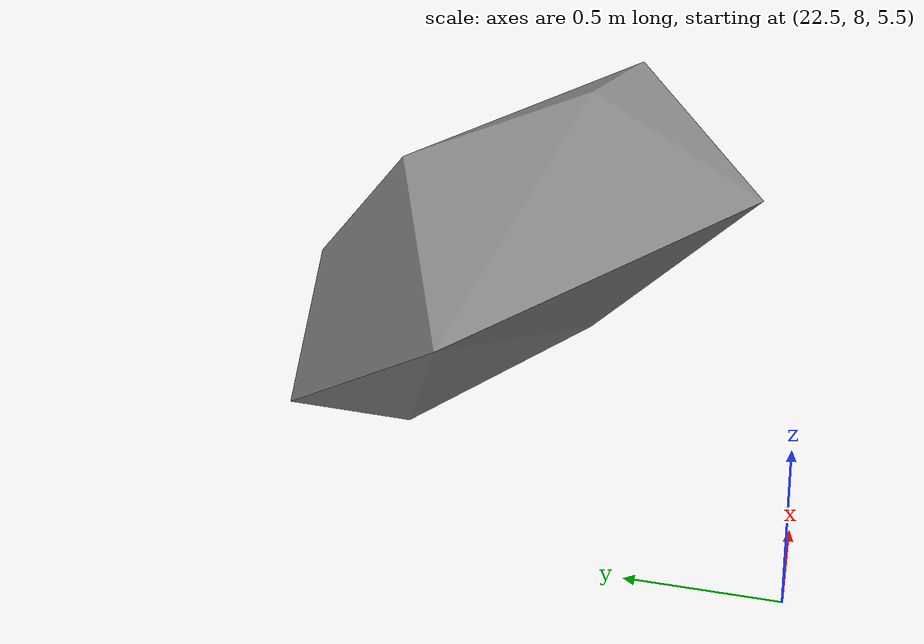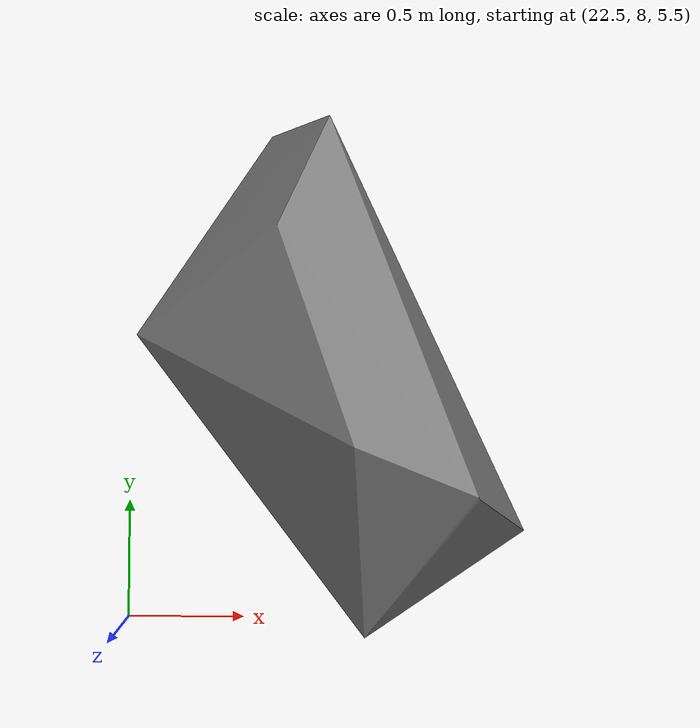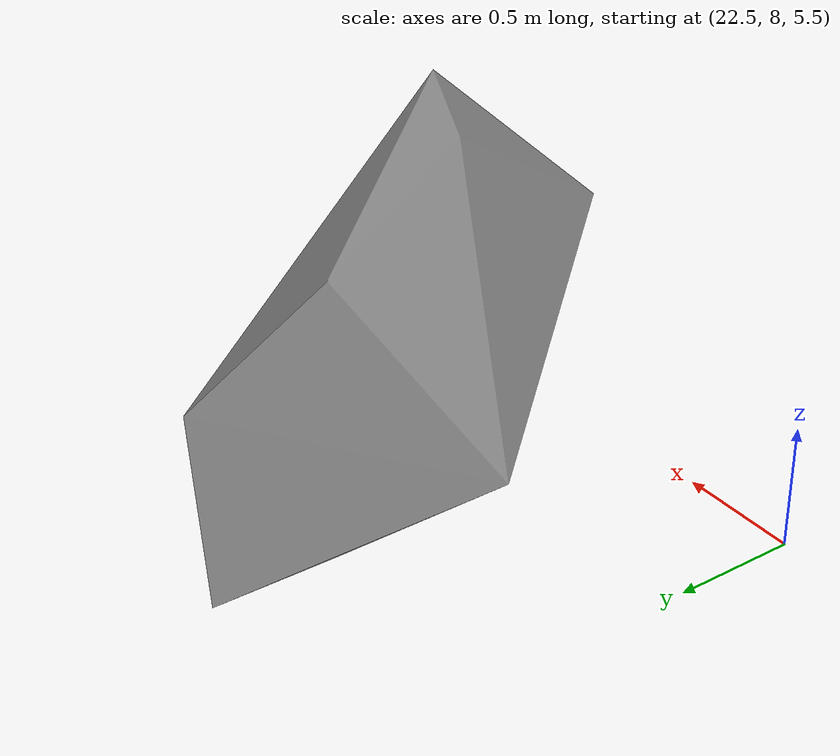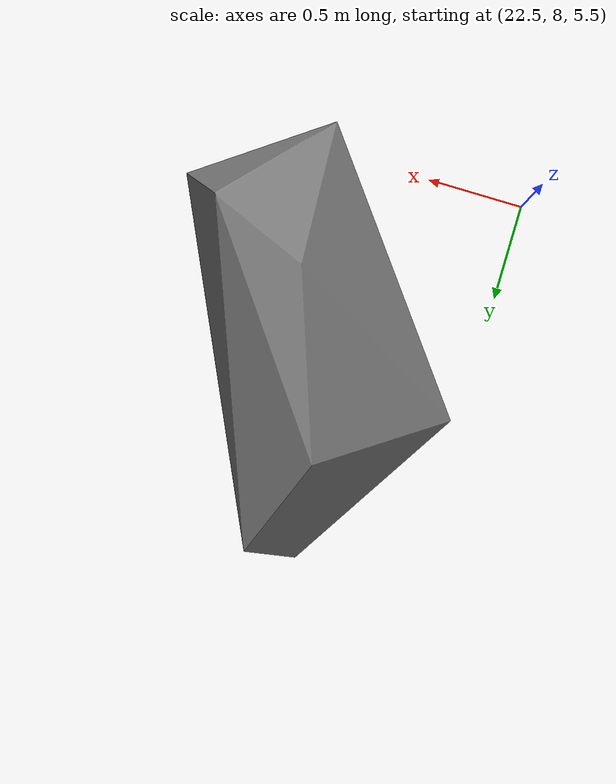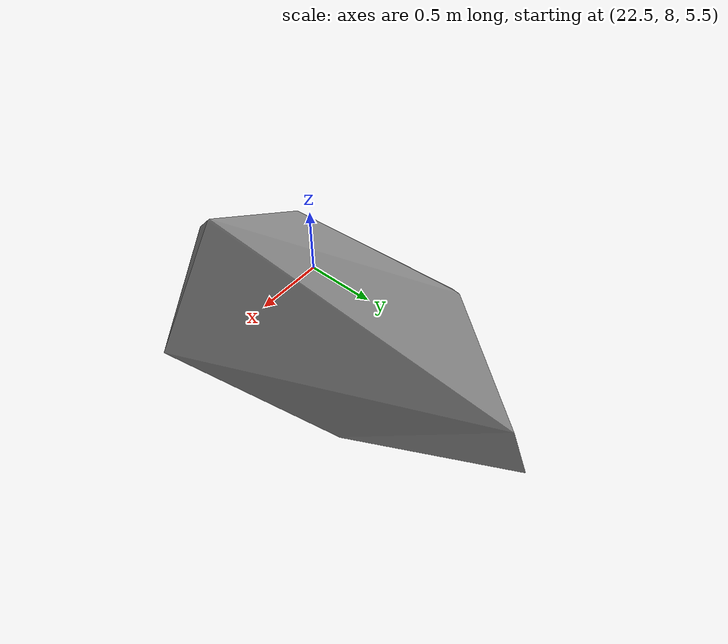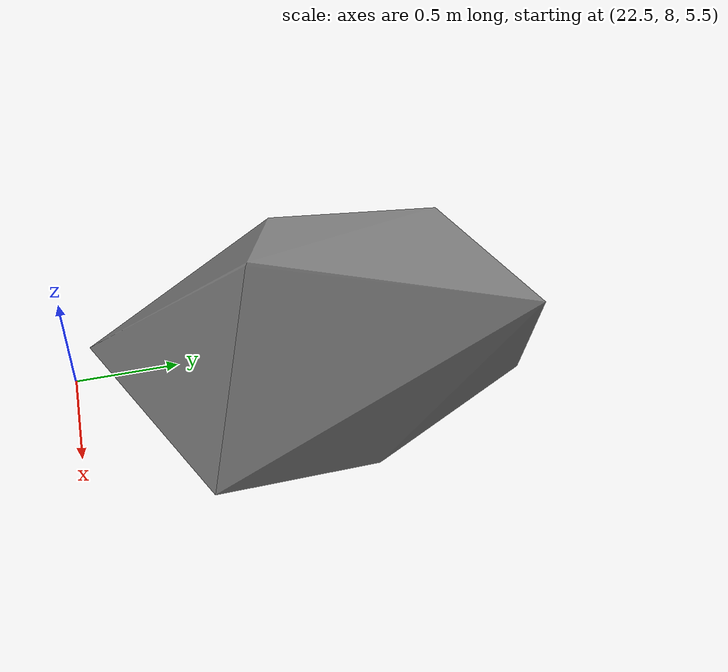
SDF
<sdf version="1.8">
 <model name="blue_mountains">
  <static>true</static>
  <link name="forest_22_20">
   <collision name="tree_20_trunk">
    <pose>24.00379 9.19253 1.921081 0 0 0.3322666</pose>
    <geometry><cylinder><radius>0.06908393</radius><length>4.4401</length></cylinder></geometry>
   </collision>
   <collision name="plant_20_crown_0">
    <pose>23.97767 9.183517 -0.298969 0 0 0.3322666</pose>
    <geometry>
     <mesh>
      <uri>model://blue_mountains/meshes/canopy_3_0.dae</uri>
      <scale>0.2763357 0.2763357 0.3301008</scale>
     </mesh>
    </geometry>
   </collision>
   <collision name="plant_20_crown_1">
    <pose>23.97767 9.183517 -0.298969 0 0 0.3322666</pose>
    <geometry>
     <mesh>
      <uri>model://blue_mountains/meshes/canopy_3_1.dae</uri>
      <scale>0.2763357 0.2763357 0.3301008</scale>
     </mesh>
    </geometry>
   </collision>
   <collision name="tree_279_trunk">
    <pose>23.27233 7.836949 0.4499535 0 0 0.1816411</pose>
    <geometry><cylinder><radius>0.07266537</radius><length>3.570133</length></cylinder></geometry>
   </collision>
   <collision name="plant_279_crown_0">
    <pose>23.24374 7.831698 -1.335113 0 0 0.1816411</pose>
    <geometry>
     <mesh>
      <uri>model://blue_mountains/meshes/canopy_3_0.dae</uri>
      <scale>0.2906615 0.2906615 0.2654228</scale>
     </mesh>
    </geometry>
   </collision>
   <collision name="plant_279_crown_1">
    <pose>23.24374 7.831698 -1.335113 0 0 0.1816411</pose>
    <geometry>
     <mesh>
      <uri>model://blue_mountains/meshes/canopy_3_1.dae</uri>
      <scale>0.2906615 0.2906615 0.2654228</scale>
     </mesh>
    </geometry>
   </collision>
   <collision name="tree_422_trunk">
    <pose>25.41343 0.04000421 -0.946225 0 0 -0.7624291</pose>
    <geometry><cylinder><radius>0.03641295</radius><length>2.30378</length></cylinder></geometry>
   </collision>
   <collision name="plant_422_crown_0">
    <pose>25.4029 0.05006409 -2.098115 0 0 -0.7624291</pose>
    <geometry>
     <mesh>
      <uri>model://blue_mountains/meshes/canopy_3_0.dae</uri>
      <scale>0.1456518 0.1456518 0.1712753</scale>
     </mesh>
    </geometry>
   </collision>
   <collision name="plant_422_crown_1">
    <pose>25.4029 0.05006409 -2.098115 0 0 -0.7624291</pose>
    <geometry>
     <mesh>
      <uri>model://blue_mountains/meshes/canopy_3_1.dae</uri>
      <scale>0.1456518 0.1456518 0.1712753</scale>
     </mesh>
    </geometry>
   </collision>
   <collision name="tree_423_trunk">
    <pose>22.60058 8.250036 0.4957298 0 0 -2.036689</pose>
    <geometry><cylinder><radius>0.04711863</radius><length>2.291623</length></cylinder></geometry>
   </collision>
   <collision name="plant_423_crown_0">
    <pose>22.60905 8.266874 -0.6500816 0 0 -2.036689</pose>
    <geometry>
     <mesh>
      <uri>model://blue_mountains/meshes/canopy_8_0.dae</uri>
      <scale>0.1884745 0.1884745 0.1705173</scale>
     </mesh>
    </geometry>
   </collision>
   <collision name="plant_423_crown_1">
    <pose>22.60905 8.266874 -0.6500816 0 0 -2.036689</pose>
    <geometry>
     <mesh>
      <uri>model://blue_mountains/meshes/canopy_8_1.dae</uri>
      <scale>0.1884745 0.1884745 0.1705173</scale>
     </mesh>
    </geometry>
   </collision>
   <collision name="tree_431_trunk">
    <pose>25.07531 8.926468 1.086908 0 0 2.515296</pose>
    <geometry><cylinder><radius>0.07271576</radius><length>4.172295</length></cylinder></geometry>
   </collision>
   <collision name="plant_431_crown_0">
    <pose>25.09888 8.909419 -0.9992392 0 0 2.515296</pose>
    <geometry>
     <mesh><uri>model://blue_mountains/meshes/canopy_0_0.dae</uri><scale>0.290863 0.290863 0.3077044</scale></mesh>
    </geometry>
   </collision>
   <collision name="plant_431_crown_1">
    <pose>25.09888 8.909419 -0.9992392 0 0 2.515296</pose>
    <geometry>
     <mesh><uri>model://blue_mountains/meshes/canopy_0_1.dae</uri><scale>0.290863 0.290863 0.3077044</scale></mesh>
    </geometry>
   </collision>
   <collision name="tree_450_trunk">
    <pose>26.5121 9.571977 0.8140832 0 0 2.530253</pose>
    <geometry><cylinder><radius>0.0620043</radius><length>3.319254</length></cylinder></geometry>
   </collision>
   <collision name="plant_450_crown_0">
    <pose>26.53241 9.557742 -0.8455436 0 0 2.530253</pose>
    <geometry>
     <mesh>
      <uri>model://blue_mountains/meshes/canopy_6_0.dae</uri>
      <scale>0.2480172 0.2480172 0.2446694</scale>
     </mesh>
    </geometry>
   </collision>
   <collision name="plant_450_crown_1">
    <pose>26.53241 9.557742 -0.8455436 0 0 2.530253</pose>
    <geometry>
     <mesh>
      <uri>model://blue_mountains/meshes/canopy_6_1.dae</uri>
      <scale>0.2480172 0.2480172 0.2446694</scale>
     </mesh>
    </geometry>
   </collision>
   <visual name="forest_visual">
    <geometry><mesh><uri>model://blue_mountains/meshes/forest_22_20.dae</uri></mesh></geometry>
    <cast_shadows>false</cast_shadows>
   </visual>
  </link>
 </model>
</sdf>
